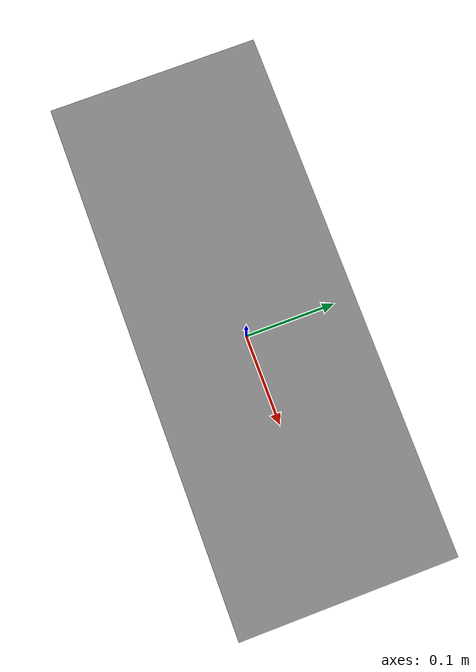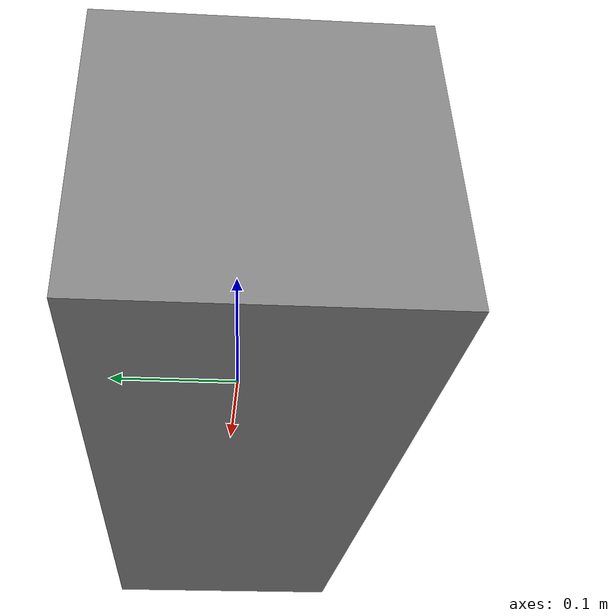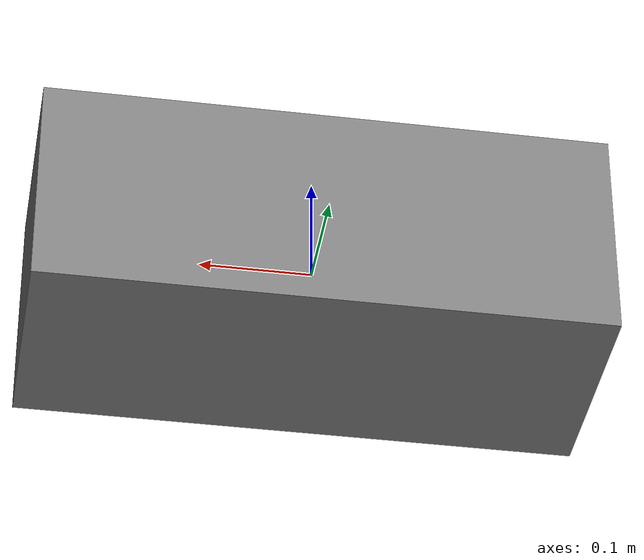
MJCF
<mujoco model="DoubleIntegrator">
<!-- Copyright (c) 2023 Boston Dynamics AI Institute LLC. All rights reserved. -->

  <option timestep="0.005" />

  <default>
    <default class="slider">
      <position kp="100" ctrlrange="-1.8 1.8" forcerange="-10 10"/>
    </default>
  </default>

  <worldbody>
    <body name="cart" pos="0 0 0">
      <joint name="slider" damping="0" type="slide" axis="1 0 0" />
      <geom name="cart" type="box" size="0.25 0.1 0.1" mass="1"/>
      <site pos="0 0 0" name="site_cart"/>
    </body>
  </worldbody>

  <actuator>
    <position name="actuator_cart" joint="slider" class="slider" />
  </actuator>

</mujoco>
